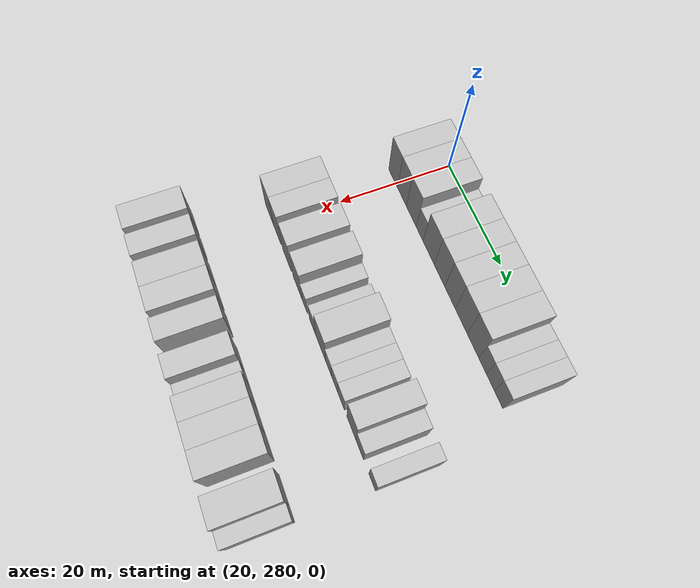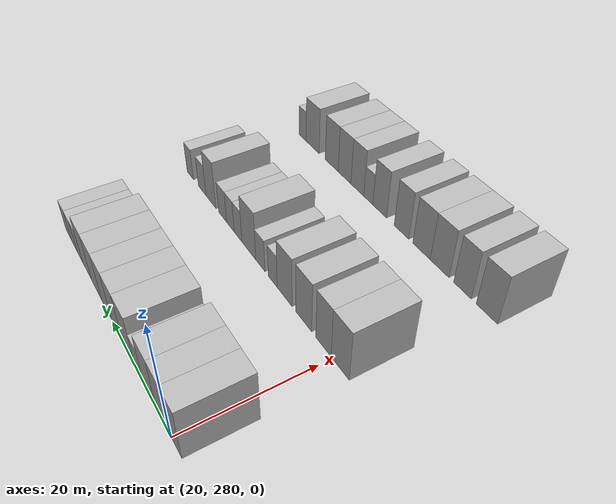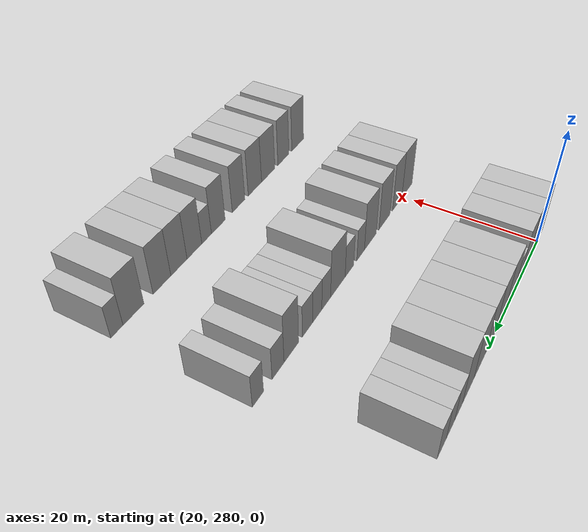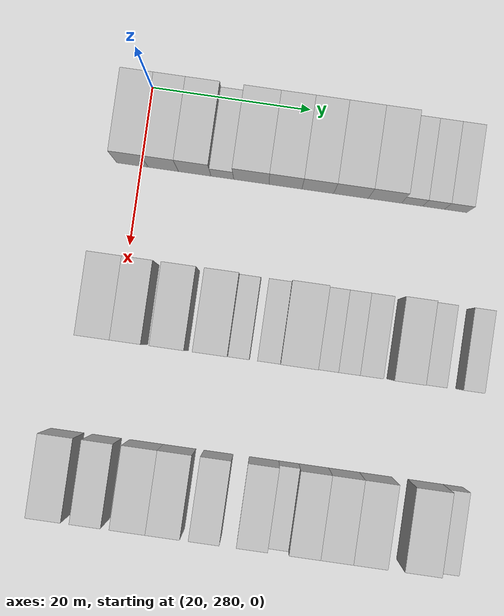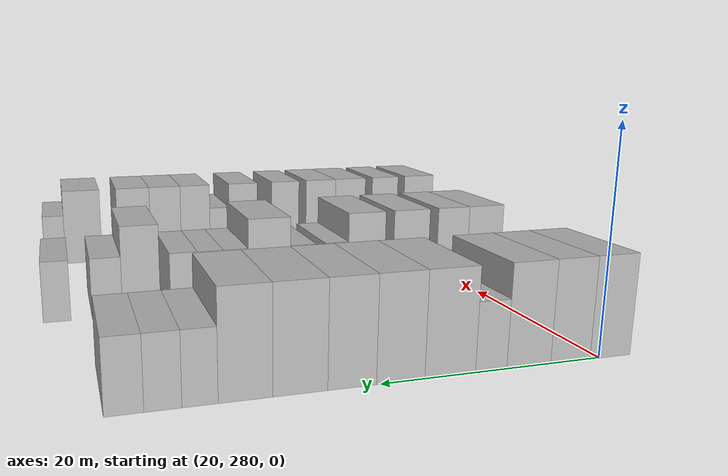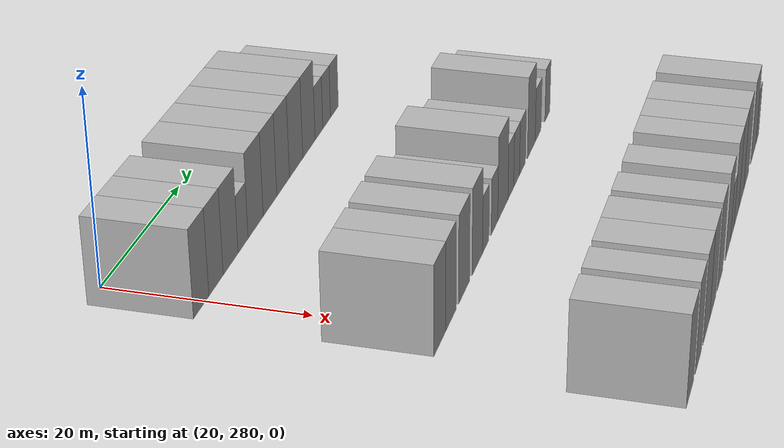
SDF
<sdf version="1.6">
 <world name="default">
  <model name="building_164">
   <static>1</static>
   <pose>25.0000 278.9140 0 0.000000 0.000000 0.000000</pose>
   <link name="link">
    <pose>0 0 4.50 0 0 0</pose>
    <collision name="collision"><geometry><box><size>10.0000 3.9760 9.0000</size></box></geometry></collision>
    <visual name="visual">
     <cast_shadows>0</cast_shadows>
     <geometry><box><size>10.0000 3.9760 9.0000</size></box></geometry>
     <material>
      <script>
       <uri>model://HANNAS_wall/materials/scripts</uri>
       <uri>model://HANNAS_wall/materials/textures</uri>
       <name>vrc/HANNAS_wall</name>
      </script>
     </material>
    </visual>
   </link>
  </model>
  <model name="building_165">
   <static>1</static>
   <pose>25.0000 282.8122 0 0.000000 0.000000 0.000000</pose>
   <link name="link">
    <pose>0 0 4.50 0 0 0</pose>
    <collision name="collision"><geometry><box><size>10.0000 3.8205 9.0000</size></box></geometry></collision>
    <visual name="visual">
     <cast_shadows>0</cast_shadows>
     <geometry><box><size>10.0000 3.8205 9.0000</size></box></geometry>
     <material>
      <script>
       <uri>model://HANNAS_wall/materials/scripts</uri>
       <uri>model://HANNAS_wall/materials/textures</uri>
       <name>vrc/HANNAS_wall</name>
      </script>
     </material>
    </visual>
   </link>
  </model>
  <model name="building_166">
   <static>1</static>
   <pose>25.0000 286.7843 0 0.000000 0.000000 0.000000</pose>
   <link name="link">
    <pose>0 0 4.50 0 0 0</pose>
    <collision name="collision"><geometry><box><size>10.0000 4.1235 9.0000</size></box></geometry></collision>
    <visual name="visual">
     <cast_shadows>0</cast_shadows>
     <geometry><box><size>10.0000 4.1235 9.0000</size></box></geometry>
     <material>
      <script>
       <uri>model://HANNAS_wall/materials/scripts</uri>
       <uri>model://HANNAS_wall/materials/textures</uri>
       <name>vrc/HANNAS_wall</name>
      </script>
     </material>
    </visual>
   </link>
  </model>
  <model name="building_167">
   <static>1</static>
   <pose>25.0000 290.2773 0 0.000000 0.000000 0.000000</pose>
   <link name="link">
    <pose>0 0 3.00 0 0 0</pose>
    <collision name="collision"><geometry><box><size>10.0000 2.8625 6.0000</size></box></geometry></collision>
    <visual name="visual">
     <cast_shadows>0</cast_shadows>
     <geometry><box><size>10.0000 2.8625 6.0000</size></box></geometry>
     <material>
      <script>
       <uri>model://HANNAS_wall/materials/scripts</uri>
       <uri>model://HANNAS_wall/materials/textures</uri>
       <name>vrc/HANNAS_wall</name>
      </script>
     </material>
    </visual>
   </link>
  </model>
  <model name="building_168">
   <static>1</static>
   <pose>25.0000 293.9492 0 0.000000 0.000000 0.000000</pose>
   <link name="link">
    <pose>0 0 4.50 0 0 0</pose>
    <collision name="collision"><geometry><box><size>10.0000 4.4813 9.0000</size></box></geometry></collision>
    <visual name="visual">
     <cast_shadows>0</cast_shadows>
     <geometry><box><size>10.0000 4.4813 9.0000</size></box></geometry>
     <material>
      <script>
       <uri>model://HANNAS_wall/materials/scripts</uri>
       <uri>model://HANNAS_wall/materials/textures</uri>
       <name>vrc/HANNAS_wall</name>
      </script>
     </material>
    </visual>
   </link>
  </model>
  <model name="building_169">
   <static>1</static>
   <pose>25.0000 298.2594 0 0.000000 0.000000 0.000000</pose>
   <link name="link">
    <pose>0 0 4.50 0 0 0</pose>
    <collision name="collision"><geometry><box><size>10.0000 4.1392 9.0000</size></box></geometry></collision>
    <visual name="visual">
     <cast_shadows>0</cast_shadows>
     <geometry><box><size>10.0000 4.1392 9.0000</size></box></geometry>
     <material>
      <script>
       <uri>model://HANNAS_wall/materials/scripts</uri>
       <uri>model://HANNAS_wall/materials/textures</uri>
       <name>vrc/HANNAS_wall</name>
      </script>
     </material>
    </visual>
   </link>
  </model>
  <model name="building_170">
   <static>1</static>
   <pose>25.0000 302.3332 0 0.000000 0.000000 0.000000</pose>
   <link name="link">
    <pose>0 0 4.50 0 0 0</pose>
    <collision name="collision"><geometry><box><size>10.0000 4.0084 9.0000</size></box></geometry></collision>
    <visual name="visual">
     <cast_shadows>0</cast_shadows>
     <geometry><box><size>10.0000 4.0084 9.0000</size></box></geometry>
     <material>
      <script>
       <uri>model://HANNAS_wall/materials/scripts</uri>
       <uri>model://HANNAS_wall/materials/textures</uri>
       <name>vrc/HANNAS_wall</name>
      </script>
     </material>
    </visual>
   </link>
  </model>
  <model name="building_171">
   <static>1</static>
   <pose>25.0000 306.5236 0 0.000000 0.000000 0.000000</pose>
   <link name="link">
    <pose>0 0 4.50 0 0 0</pose>
    <collision name="collision"><geometry><box><size>10.0000 4.3724 9.0000</size></box></geometry></collision>
    <visual name="visual">
     <cast_shadows>0</cast_shadows>
     <geometry><box><size>10.0000 4.3724 9.0000</size></box></geometry>
     <material>
      <script>
       <uri>model://HANNAS_wall/materials/scripts</uri>
       <uri>model://HANNAS_wall/materials/textures</uri>
       <name>vrc/HANNAS_wall</name>
      </script>
     </material>
    </visual>
   </link>
  </model>
  <model name="building_172">
   <static>1</static>
   <pose>25.0000 310.7991 0 0.000000 0.000000 0.000000</pose>
   <link name="link">
    <pose>0 0 4.50 0 0 0</pose>
    <collision name="collision"><geometry><box><size>10.0000 4.1786 9.0000</size></box></geometry></collision>
    <visual name="visual">
     <cast_shadows>0</cast_shadows>
     <geometry><box><size>10.0000 4.1786 9.0000</size></box></geometry>
     <material>
      <script>
       <uri>model://HANNAS_wall/materials/scripts</uri>
       <uri>model://HANNAS_wall/materials/textures</uri>
       <name>vrc/HANNAS_wall</name>
      </script>
     </material>
    </visual>
   </link>
  </model>
  <model name="building_173">
   <static>1</static>
   <pose>25.0000 314.2296 0 0.000000 0.000000 0.000000</pose>
   <link name="link">
    <pose>0 0 3.00 0 0 0</pose>
    <collision name="collision"><geometry><box><size>10.0000 2.6823 6.0000</size></box></geometry></collision>
    <visual name="visual">
     <cast_shadows>0</cast_shadows>
     <geometry><box><size>10.0000 2.6823 6.0000</size></box></geometry>
     <material>
      <script>
       <uri>model://HANNAS_wall/materials/scripts</uri>
       <uri>model://HANNAS_wall/materials/textures</uri>
       <name>vrc/HANNAS_wall</name>
      </script>
     </material>
    </visual>
   </link>
  </model>
  <model name="building_174">
   <static>1</static>
   <pose>25.0000 316.9485 0 0.000000 0.000000 0.000000</pose>
   <link name="link">
    <pose>0 0 3.00 0 0 0</pose>
    <collision name="collision"><geometry><box><size>10.0000 2.7555 6.0000</size></box></geometry></collision>
    <visual name="visual">
     <cast_shadows>0</cast_shadows>
     <geometry><box><size>10.0000 2.7555 6.0000</size></box></geometry>
     <material>
      <script>
       <uri>model://HANNAS_wall/materials/scripts</uri>
       <uri>model://HANNAS_wall/materials/textures</uri>
       <name>vrc/HANNAS_wall</name>
      </script>
     </material>
    </visual>
   </link>
  </model>
  <model name="building_175">
   <static>1</static>
   <pose>25.0000 319.7554 0 0.000000 0.000000 0.000000</pose>
   <link name="link">
    <pose>0 0 3.00 0 0 0</pose>
    <collision name="collision"><geometry><box><size>10.0000 2.8583 6.0000</size></box></geometry></collision>
    <visual name="visual">
     <cast_shadows>0</cast_shadows>
     <geometry><box><size>10.0000 2.8583 6.0000</size></box></geometry>
     <material>
      <script>
       <uri>model://HANNAS_wall/materials/scripts</uri>
       <uri>model://HANNAS_wall/materials/textures</uri>
       <name>vrc/HANNAS_wall</name>
      </script>
     </material>
    </visual>
   </link>
  </model>
  <model name="building_362">
   <static>1</static>
   <pose>47.0000 278.2323 0 0.000000 0.000000 0.000000</pose>
   <link name="link">
    <pose>0 0 4.50 0 0 0</pose>
    <collision name="collision"><geometry><box><size>10.0000 4.1802 9.0000</size></box></geometry></collision>
    <visual name="visual">
     <cast_shadows>0</cast_shadows>
     <geometry><box><size>10.0000 4.1802 9.0000</size></box></geometry>
     <material>
      <script>
       <uri>model://HANNAS_wall/materials/scripts</uri>
       <uri>model://HANNAS_wall/materials/textures</uri>
       <name>vrc/HANNAS_wall</name>
      </script>
     </material>
    </visual>
   </link>
  </model>
  <model name="building_363">
   <static>1</static>
   <pose>47.0000 282.1758 0 0.000000 0.000000 0.000000</pose>
   <link name="link">
    <pose>0 0 4.50 0 0 0</pose>
    <collision name="collision"><geometry><box><size>10.0000 3.7068 9.0000</size></box></geometry></collision>
    <visual name="visual">
     <cast_shadows>0</cast_shadows>
     <geometry><box><size>10.0000 3.7068 9.0000</size></box></geometry>
     <material>
      <script>
       <uri>model://HANNAS_wall/materials/scripts</uri>
       <uri>model://HANNAS_wall/materials/textures</uri>
       <name>vrc/HANNAS_wall</name>
      </script>
     </material>
    </visual>
   </link>
  </model>
  <model name="building_364">
   <static>1</static>
   <pose>47.0000 287.0910 0 0.000000 0.000000 0.000000</pose>
   <link name="link">
    <pose>0 0 4.50 0 0 0</pose>
    <collision name="collision"><geometry><box><size>10.0000 4.1236 9.0000</size></box></geometry></collision>
    <visual name="visual">
     <cast_shadows>0</cast_shadows>
     <geometry><box><size>10.0000 4.1236 9.0000</size></box></geometry>
     <material>
      <script>
       <uri>model://HANNAS_wall/materials/scripts</uri>
       <uri>model://HANNAS_wall/materials/textures</uri>
       <name>vrc/HANNAS_wall</name>
      </script>
     </material>
    </visual>
   </link>
  </model>
  <model name="building_365">
   <static>1</static>
   <pose>47.0000 292.2251 0 0.000000 0.000000 0.000000</pose>
   <link name="link">
    <pose>0 0 4.50 0 0 0</pose>
    <collision name="collision"><geometry><box><size>10.0000 4.1446 9.0000</size></box></geometry></collision>
    <visual name="visual">
     <cast_shadows>0</cast_shadows>
     <geometry><box><size>10.0000 4.1446 9.0000</size></box></geometry>
     <material>
      <script>
       <uri>model://HANNAS_wall/materials/scripts</uri>
       <uri>model://HANNAS_wall/materials/textures</uri>
       <name>vrc/HANNAS_wall</name>
      </script>
     </material>
    </visual>
   </link>
  </model>
  <model name="building_366">
   <static>1</static>
   <pose>47.0000 295.5887 0 0.000000 0.000000 0.000000</pose>
   <link name="link">
    <pose>0 0 3.00 0 0 0</pose>
    <collision name="collision"><geometry><box><size>10.0000 2.5825 6.0000</size></box></geometry></collision>
    <visual name="visual">
     <cast_shadows>0</cast_shadows>
     <geometry><box><size>10.0000 2.5825 6.0000</size></box></geometry>
     <material>
      <script>
       <uri>model://HANNAS_wall/materials/scripts</uri>
       <uri>model://HANNAS_wall/materials/textures</uri>
       <name>vrc/HANNAS_wall</name>
      </script>
     </material>
    </visual>
   </link>
  </model>
  <model name="building_367">
   <static>1</static>
   <pose>47.0000 299.2667 0 0.000000 0.000000 0.000000</pose>
   <link name="link">
    <pose>0 0 3.00 0 0 0</pose>
    <collision name="collision"><geometry><box><size>10.0000 2.7736 6.0000</size></box></geometry></collision>
    <visual name="visual">
     <cast_shadows>0</cast_shadows>
     <geometry><box><size>10.0000 2.7736 6.0000</size></box></geometry>
     <material>
      <script>
       <uri>model://HANNAS_wall/materials/scripts</uri>
       <uri>model://HANNAS_wall/materials/textures</uri>
       <name>vrc/HANNAS_wall</name>
      </script>
     </material>
    </visual>
   </link>
  </model>
  <model name="building_368">
   <static>1</static>
   <pose>47.0000 302.8865 0 0.000000 0.000000 0.000000</pose>
   <link name="link">
    <pose>0 0 4.50 0 0 0</pose>
    <collision name="collision"><geometry><box><size>10.0000 4.4659 9.0000</size></box></geometry></collision>
    <visual name="visual">
     <cast_shadows>0</cast_shadows>
     <geometry><box><size>10.0000 4.4659 9.0000</size></box></geometry>
     <material>
      <script>
       <uri>model://HANNAS_wall/materials/scripts</uri>
       <uri>model://HANNAS_wall/materials/textures</uri>
       <name>vrc/HANNAS_wall</name>
      </script>
     </material>
    </visual>
   </link>
  </model>
  <model name="building_369">
   <static>1</static>
   <pose>47.0000 306.4107 0 0.000000 0.000000 0.000000</pose>
   <link name="link">
    <pose>0 0 3.00 0 0 0</pose>
    <collision name="collision"><geometry><box><size>10.0000 2.5827 6.0000</size></box></geometry></collision>
    <visual name="visual">
     <cast_shadows>0</cast_shadows>
     <geometry><box><size>10.0000 2.5827 6.0000</size></box></geometry>
     <material>
      <script>
       <uri>model://HANNAS_wall/materials/scripts</uri>
       <uri>model://HANNAS_wall/materials/textures</uri>
       <name>vrc/HANNAS_wall</name>
      </script>
     </material>
    </visual>
   </link>
  </model>
  <model name="building_370">
   <static>1</static>
   <pose>47.0000 309.0109 0 0.000000 0.000000 0.000000</pose>
   <link name="link">
    <pose>0 0 3.00 0 0 0</pose>
    <collision name="collision"><geometry><box><size>10.0000 2.6177 6.0000</size></box></geometry></collision>
    <visual name="visual">
     <cast_shadows>0</cast_shadows>
     <geometry><box><size>10.0000 2.6177 6.0000</size></box></geometry>
     <material>
      <script>
       <uri>model://HANNAS_wall/materials/scripts</uri>
       <uri>model://HANNAS_wall/materials/textures</uri>
       <name>vrc/HANNAS_wall</name>
      </script>
     </material>
    </visual>
   </link>
  </model>
  <model name="building_371">
   <static>1</static>
   <pose>47.0000 311.7317 0 0.000000 0.000000 0.000000</pose>
   <link name="link">
    <pose>0 0 3.00 0 0 0</pose>
    <collision name="collision"><geometry><box><size>10.0000 2.8239 6.0000</size></box></geometry></collision>
    <visual name="visual">
     <cast_shadows>0</cast_shadows>
     <geometry><box><size>10.0000 2.8239 6.0000</size></box></geometry>
     <material>
      <script>
       <uri>model://HANNAS_wall/materials/scripts</uri>
       <uri>model://HANNAS_wall/materials/textures</uri>
       <name>vrc/HANNAS_wall</name>
      </script>
     </material>
    </visual>
   </link>
  </model>
  <model name="building_372">
   <static>1</static>
   <pose>47.0000 316.0126 0 0.000000 0.000000 0.000000</pose>
   <link name="link">
    <pose>0 0 4.50 0 0 0</pose>
    <collision name="collision"><geometry><box><size>10.0000 3.7378 9.0000</size></box></geometry></collision>
    <visual name="visual">
     <cast_shadows>0</cast_shadows>
     <geometry><box><size>10.0000 3.7378 9.0000</size></box></geometry>
     <material>
      <script>
       <uri>model://HANNAS_wall/materials/scripts</uri>
       <uri>model://HANNAS_wall/materials/textures</uri>
       <name>vrc/HANNAS_wall</name>
      </script>
     </material>
    </visual>
   </link>
  </model>
  <model name="building_373">
   <static>1</static>
   <pose>47.0000 319.3524 0 0.000000 0.000000 0.000000</pose>
   <link name="link">
    <pose>0 0 3.00 0 0 0</pose>
    <collision name="collision"><geometry><box><size>10.0000 2.9419 6.0000</size></box></geometry></collision>
    <visual name="visual">
     <cast_shadows>0</cast_shadows>
     <geometry><box><size>10.0000 2.9419 6.0000</size></box></geometry>
     <material>
      <script>
       <uri>model://HANNAS_wall/materials/scripts</uri>
       <uri>model://HANNAS_wall/materials/textures</uri>
       <name>vrc/HANNAS_wall</name>
      </script>
     </material>
    </visual>
   </link>
  </model>
  <model name="building_374">
   <static>1</static>
   <pose>47.0000 324.1175 0 0.000000 0.000000 0.000000</pose>
   <link name="link">
    <pose>0 0 3.00 0 0 0</pose>
    <collision name="collision"><geometry><box><size>10.0000 2.5882 6.0000</size></box></geometry></collision>
    <visual name="visual">
     <cast_shadows>0</cast_shadows>
     <geometry><box><size>10.0000 2.5882 6.0000</size></box></geometry>
     <material>
      <script>
       <uri>model://HANNAS_wall/materials/scripts</uri>
       <uri>model://HANNAS_wall/materials/textures</uri>
       <name>vrc/HANNAS_wall</name>
      </script>
     </material>
    </visual>
   </link>
  </model>
  <model name="building_537">
   <static>1</static>
   <pose>69.0000 275.6578 0 0.000000 0.000000 0.000000</pose>
   <link name="link">
    <pose>0 0 4.50 0 0 0</pose>
    <collision name="collision"><geometry><box><size>10.0000 4.2117 9.0000</size></box></geometry></collision>
    <visual name="visual">
     <cast_shadows>0</cast_shadows>
     <geometry><box><size>10.0000 4.2117 9.0000</size></box></geometry>
     <material>
      <script>
       <uri>model://HANNAS_wall/materials/scripts</uri>
       <uri>model://HANNAS_wall/materials/textures</uri>
       <name>vrc/HANNAS_wall</name>
      </script>
     </material>
    </visual>
   </link>
  </model>
  <model name="building_538">
   <static>1</static>
   <pose>69.0000 280.6283 0 0.000000 0.000000 0.000000</pose>
   <link name="link">
    <pose>0 0 4.50 0 0 0</pose>
    <collision name="collision"><geometry><box><size>10.0000 3.7292 9.0000</size></box></geometry></collision>
    <visual name="visual">
     <cast_shadows>0</cast_shadows>
     <geometry><box><size>10.0000 3.7292 9.0000</size></box></geometry>
     <material>
      <script>
       <uri>model://HANNAS_wall/materials/scripts</uri>
       <uri>model://HANNAS_wall/materials/textures</uri>
       <name>vrc/HANNAS_wall</name>
      </script>
     </material>
    </visual>
   </link>
  </model>
  <model name="building_539">
   <static>1</static>
   <pose>69.0000 285.6185 0 0.000000 0.000000 0.000000</pose>
   <link name="link">
    <pose>0 0 4.50 0 0 0</pose>
    <collision name="collision"><geometry><box><size>10.0000 4.2511 9.0000</size></box></geometry></collision>
    <visual name="visual">
     <cast_shadows>0</cast_shadows>
     <geometry><box><size>10.0000 4.2511 9.0000</size></box></geometry>
     <material>
      <script>
       <uri>model://HANNAS_wall/materials/scripts</uri>
       <uri>model://HANNAS_wall/materials/textures</uri>
       <name>vrc/HANNAS_wall</name>
      </script>
     </material>
    </visual>
   </link>
  </model>
  <model name="building_540">
   <static>1</static>
   <pose>69.0000 289.7958 0 0.000000 0.000000 0.000000</pose>
   <link name="link">
    <pose>0 0 4.50 0 0 0</pose>
    <collision name="collision"><geometry><box><size>10.0000 4.1037 9.0000</size></box></geometry></collision>
    <visual name="visual">
     <cast_shadows>0</cast_shadows>
     <geometry><box><size>10.0000 4.1037 9.0000</size></box></geometry>
     <material>
      <script>
       <uri>model://HANNAS_wall/materials/scripts</uri>
       <uri>model://HANNAS_wall/materials/textures</uri>
       <name>vrc/HANNAS_wall</name>
      </script>
     </material>
    </visual>
   </link>
  </model>
  <model name="building_541">
   <static>1</static>
   <pose>69.0000 294.6865 0 0.000000 0.000000 0.000000</pose>
   <link name="link">
    <pose>0 0 4.50 0 0 0</pose>
    <collision name="collision"><geometry><box><size>10.0000 3.6777 9.0000</size></box></geometry></collision>
    <visual name="visual">
     <cast_shadows>0</cast_shadows>
     <geometry><box><size>10.0000 3.6777 9.0000</size></box></geometry>
     <material>
      <script>
       <uri>model://HANNAS_wall/materials/scripts</uri>
       <uri>model://HANNAS_wall/materials/textures</uri>
       <name>vrc/HANNAS_wall</name>
      </script>
     </material>
    </visual>
   </link>
  </model>
  <model name="building_542">
   <static>1</static>
   <pose>69.0000 300.3839 0 0.000000 0.000000 0.000000</pose>
   <link name="link">
    <pose>0 0 4.50 0 0 0</pose>
    <collision name="collision"><geometry><box><size>10.0000 3.7170 9.0000</size></box></geometry></collision>
    <visual name="visual">
     <cast_shadows>0</cast_shadows>
     <geometry><box><size>10.0000 3.7170 9.0000</size></box></geometry>
     <material>
      <script>
       <uri>model://HANNAS_wall/materials/scripts</uri>
       <uri>model://HANNAS_wall/materials/textures</uri>
       <name>vrc/HANNAS_wall</name>
      </script>
     </material>
    </visual>
   </link>
  </model>
  <model name="building_543">
   <static>1</static>
   <pose>69.0000 303.5073 0 0.000000 0.000000 0.000000</pose>
   <link name="link">
    <pose>0 0 3.00 0 0 0</pose>
    <collision name="collision"><geometry><box><size>10.0000 2.5298 6.0000</size></box></geometry></collision>
    <visual name="visual">
     <cast_shadows>0</cast_shadows>
     <geometry><box><size>10.0000 2.5298 6.0000</size></box></geometry>
     <material>
      <script>
       <uri>model://HANNAS_wall/materials/scripts</uri>
       <uri>model://HANNAS_wall/materials/textures</uri>
       <name>vrc/HANNAS_wall</name>
      </script>
     </material>
    </visual>
   </link>
  </model>
  <model name="building_544">
   <static>1</static>
   <pose>69.0000 306.6435 0 0.000000 0.000000 0.000000</pose>
   <link name="link">
    <pose>0 0 4.50 0 0 0</pose>
    <collision name="collision"><geometry><box><size>10.0000 3.7425 9.0000</size></box></geometry></collision>
    <visual name="visual">
     <cast_shadows>0</cast_shadows>
     <geometry><box><size>10.0000 3.7425 9.0000</size></box></geometry>
     <material>
      <script>
       <uri>model://HANNAS_wall/materials/scripts</uri>
       <uri>model://HANNAS_wall/materials/textures</uri>
       <name>vrc/HANNAS_wall</name>
      </script>
     </material>
    </visual>
   </link>
  </model>
  <model name="building_545">
   <static>1</static>
   <pose>69.0000 310.4552 0 0.000000 0.000000 0.000000</pose>
   <link name="link">
    <pose>0 0 4.50 0 0 0</pose>
    <collision name="collision"><geometry><box><size>10.0000 3.8809 9.0000</size></box></geometry></collision>
    <visual name="visual">
     <cast_shadows>0</cast_shadows>
     <geometry><box><size>10.0000 3.8809 9.0000</size></box></geometry>
     <material>
      <script>
       <uri>model://HANNAS_wall/materials/scripts</uri>
       <uri>model://HANNAS_wall/materials/textures</uri>
       <name>vrc/HANNAS_wall</name>
      </script>
     </material>
    </visual>
   </link>
  </model>
  <model name="building_546">
   <static>1</static>
   <pose>69.0000 314.4306 0 0.000000 0.000000 0.000000</pose>
   <link name="link">
    <pose>0 0 4.50 0 0 0</pose>
    <collision name="collision"><geometry><box><size>10.0000 4.0698 9.0000</size></box></geometry></collision>
    <visual name="visual">
     <cast_shadows>0</cast_shadows>
     <geometry><box><size>10.0000 4.0698 9.0000</size></box></geometry>
     <material>
      <script>
       <uri>model://HANNAS_wall/materials/scripts</uri>
       <uri>model://HANNAS_wall/materials/textures</uri>
       <name>vrc/HANNAS_wall</name>
      </script>
     </material>
    </visual>
   </link>
  </model>
  <model name="building_547">
   <static>1</static>
   <pose>69.0000 320.6702 0 0.000000 0.000000 0.000000</pose>
   <link name="link">
    <pose>0 0 4.50 0 0 0</pose>
    <collision name="collision"><geometry><box><size>10.0000 4.4095 9.0000</size></box></geometry></collision>
    <visual name="visual">
     <cast_shadows>0</cast_shadows>
     <geometry><box><size>10.0000 4.4095 9.0000</size></box></geometry>
     <material>
      <script>
       <uri>model://HANNAS_wall/materials/scripts</uri>
       <uri>model://HANNAS_wall/materials/textures</uri>
       <name>vrc/HANNAS_wall</name>
      </script>
     </material>
    </visual>
   </link>
  </model>
  <model name="building_548">
   <static>1</static>
   <pose>69.0000 324.1139 0 0.000000 0.000000 0.000000</pose>
   <link name="link">
    <pose>0 0 3.00 0 0 0</pose>
    <collision name="collision"><geometry><box><size>10.0000 2.4778 6.0000</size></box></geometry></collision>
    <visual name="visual">
     <cast_shadows>0</cast_shadows>
     <geometry><box><size>10.0000 2.4778 6.0000</size></box></geometry>
     <material>
      <script>
       <uri>model://HANNAS_wall/materials/scripts</uri>
       <uri>model://HANNAS_wall/materials/textures</uri>
       <name>vrc/HANNAS_wall</name>
      </script>
     </material>
    </visual>
   </link>
  </model>
 </world>
</sdf>
